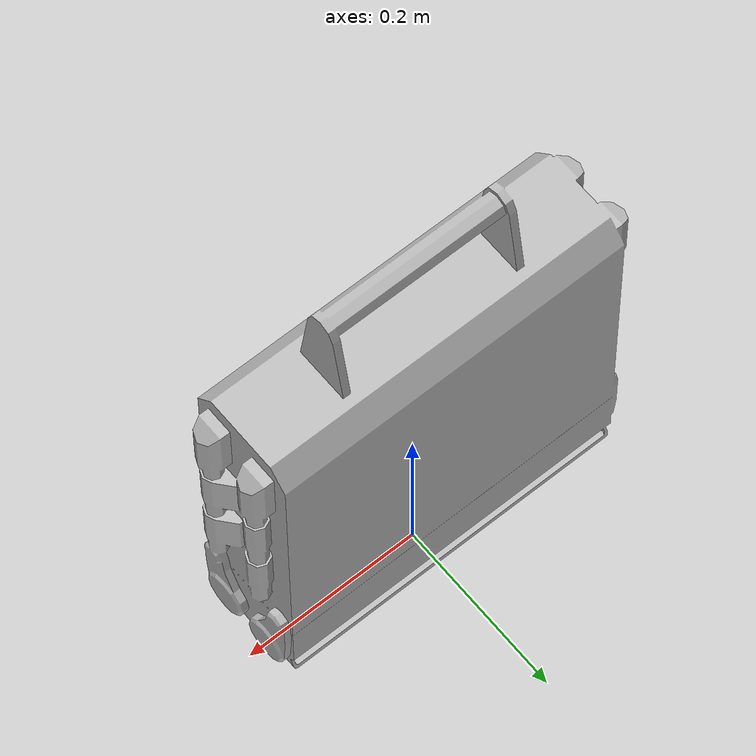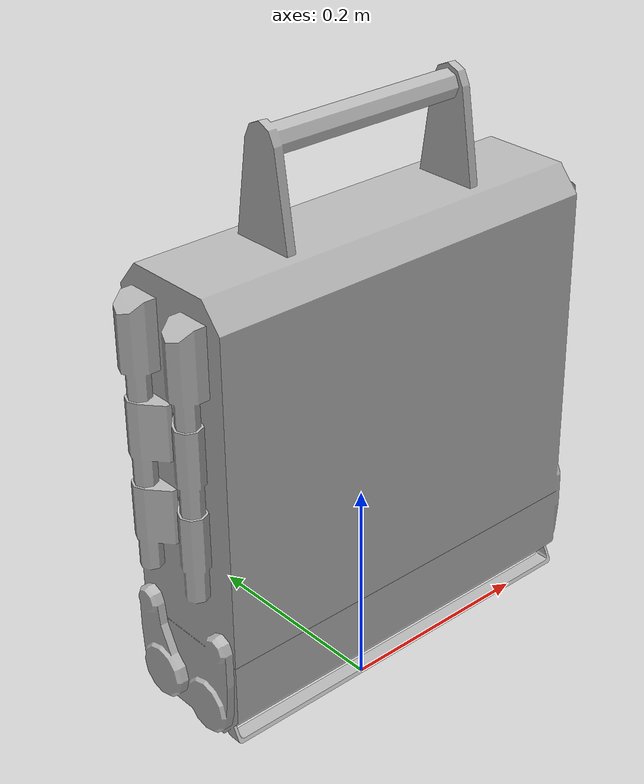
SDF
<?xml version="1.0" ?>
<sdf version="1.5">
  <model name="solar_panel">
    <link name="link">
      <pose>0 0 0.065 0 0 0</pose>
      <inertial>
        <mass>1000</mass>
        <inertia>
          <ixx>100</ixx>
          <ixy>0</ixy>
          <ixz>0</ixz>
          <iyy>1000</iyy>
          <iyz>0</iyz>
          <izz>100</izz>
        </inertia>
      </inertial>

      <collision name="collision">
        <geometry>
          <mesh>
            <uri>model://solar_panel/meshes/solar_panel.dae</uri>
          </mesh>
        </geometry>
      </collision>

      <visual name="visual">
        <geometry>
          <mesh>
            <uri>model://solar_panel/meshes/solar_panel.dae</uri>
          </mesh>
        </geometry>
      </visual>
    </link>
  </model>
</sdf>
